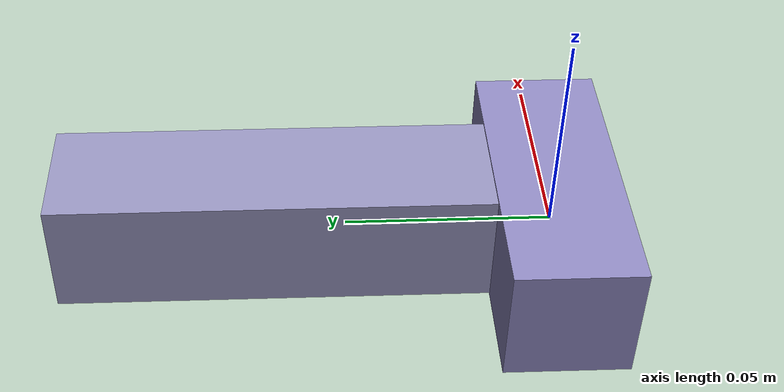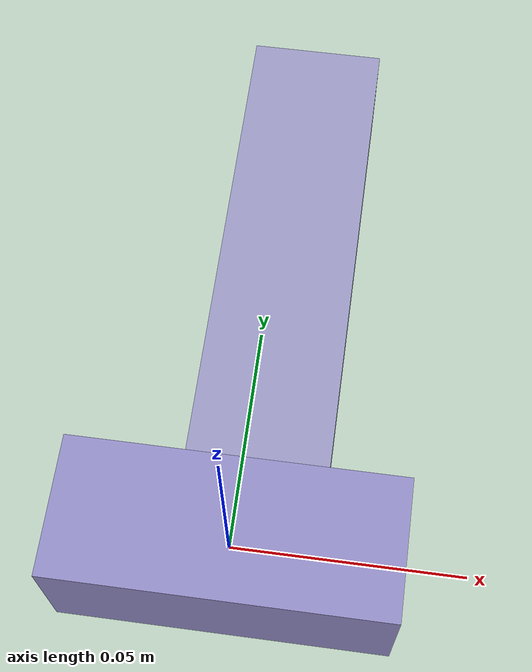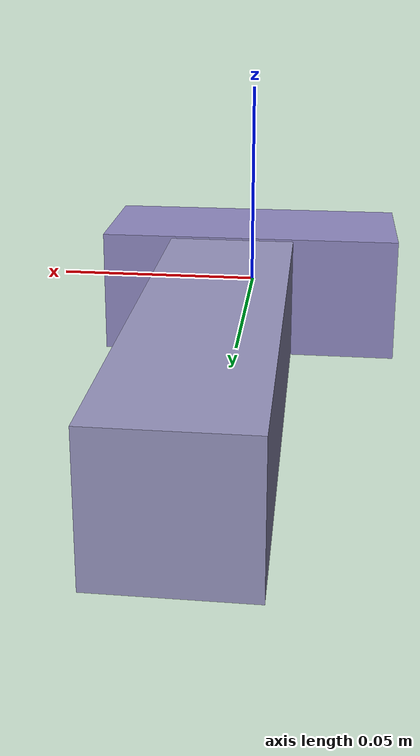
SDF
<sdf version="1.4"><world name="default"><model name="object0"><link name="link1"><pose>0 0 0 0 0 0</pose><inertial><pose>0 0 0 0 0 0</pose><mass>0.03918062870202082</mass><inertia><ixx>5.877094305303122e-06</ixx><ixy>0</ixy><iyy>2.0127342302348574e-05</iyy><ixz>0</ixz><iyz>0</iyz><izz>2.0127342302348574e-05</izz></inertia></inertial><visual name="link1_visual"><pose>0 0  0 0 0 0</pose><geometry><box><size>0.07255671981855707 0.03 0.03</size></box></geometry><material><diffuse>0.5575489422708605 0.535033116058462 0.751688258943356 1</diffuse></material></visual><collision><pose>0 0  0 0 0 0</pose><geometry><box><size>0.07255671981855707 0.03 0.03</size></box></geometry></collision></link><link name="link2"><pose>0.004123312705601751 0.06334511303665102 0 0 0 0</pose><inertial><pose>0 0 0 0 0 0</pose><mass>0.06155822731759292</mass><inertia><ixx>7.097792648521484e-05</ixx><ixy>0</ixy><iyy>8.93107281332744e-06</iyy><ixz>0</ixz><iyz>0</iyz><izz>7.128058776952634e-05</izz></inertia></inertial><visual name="link2_visual"><pose>0 0  0 0 0 0</pose><geometry><box><size>0.03 0.11399671725480172 0.028999999999999998</size></box></geometry><material><diffuse>0.5850867183613244 0.5769879854717743 0.7392293803007824 1</diffuse></material></visual><collision><pose>0 0  0 0 0 0</pose><geometry><box><size>0.03 0.11399671725480172 0.028999999999999998</size></box></geometry></collision></link><joint name="link_joint_0" type="fixed"><parent>link1</parent><child>link2</child><pose>0 0 0 0 0 0</pose><axis><xyz>0 0 1</xyz></axis></joint></model></world></sdf>
